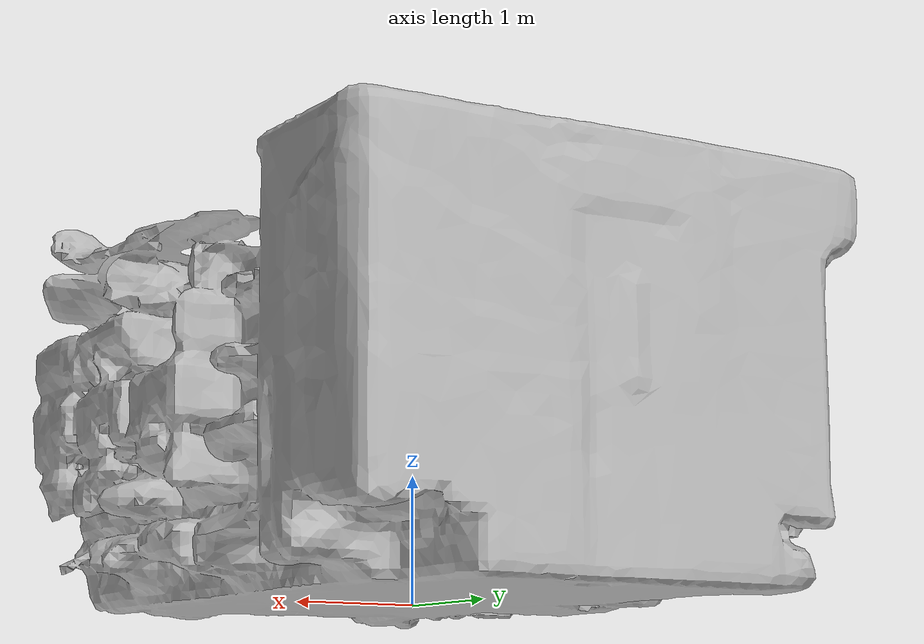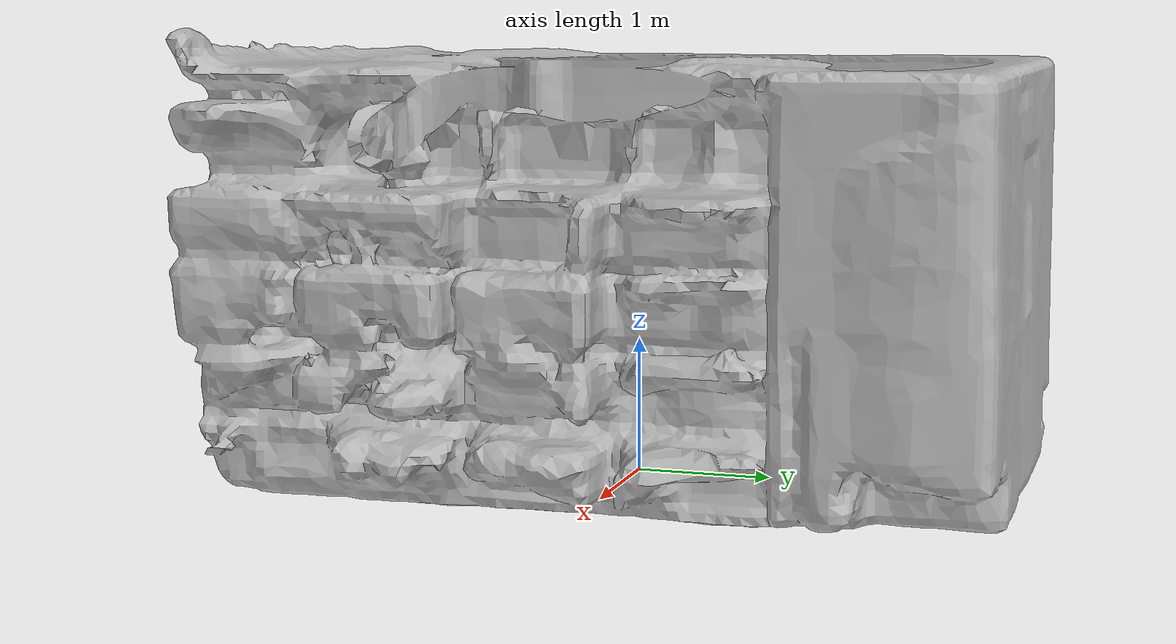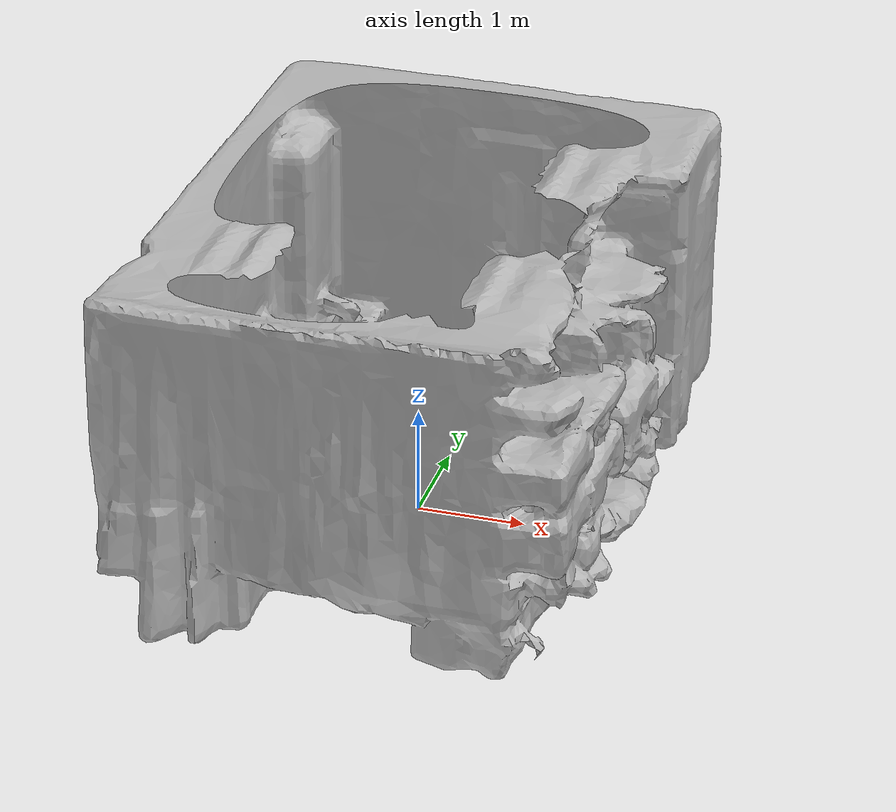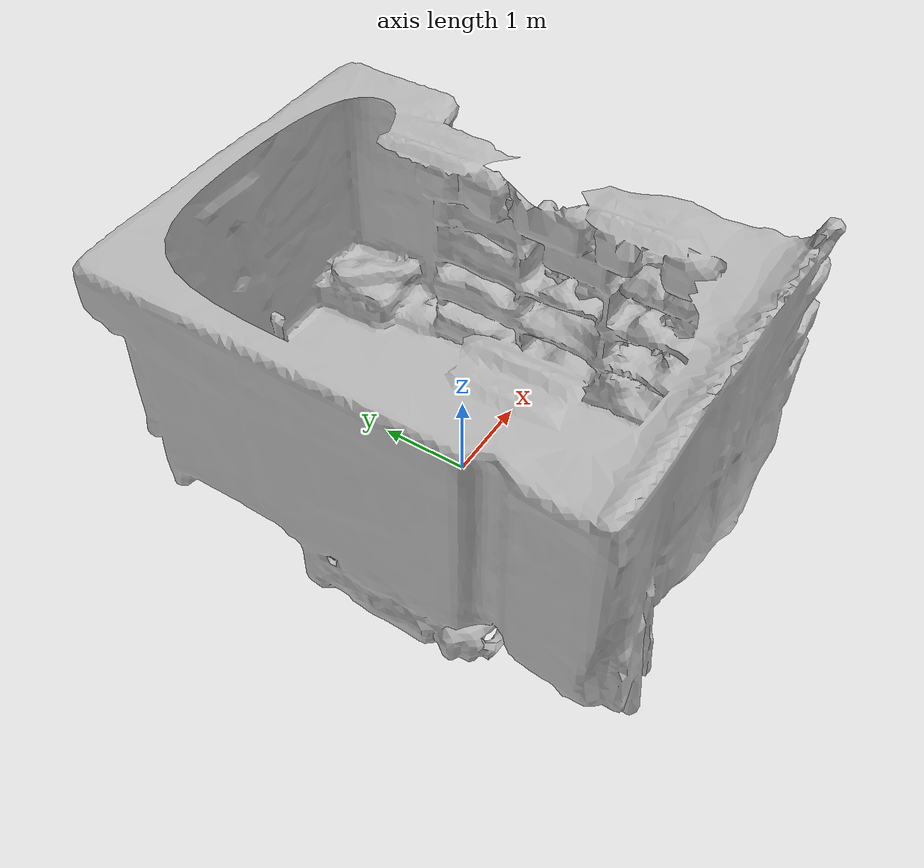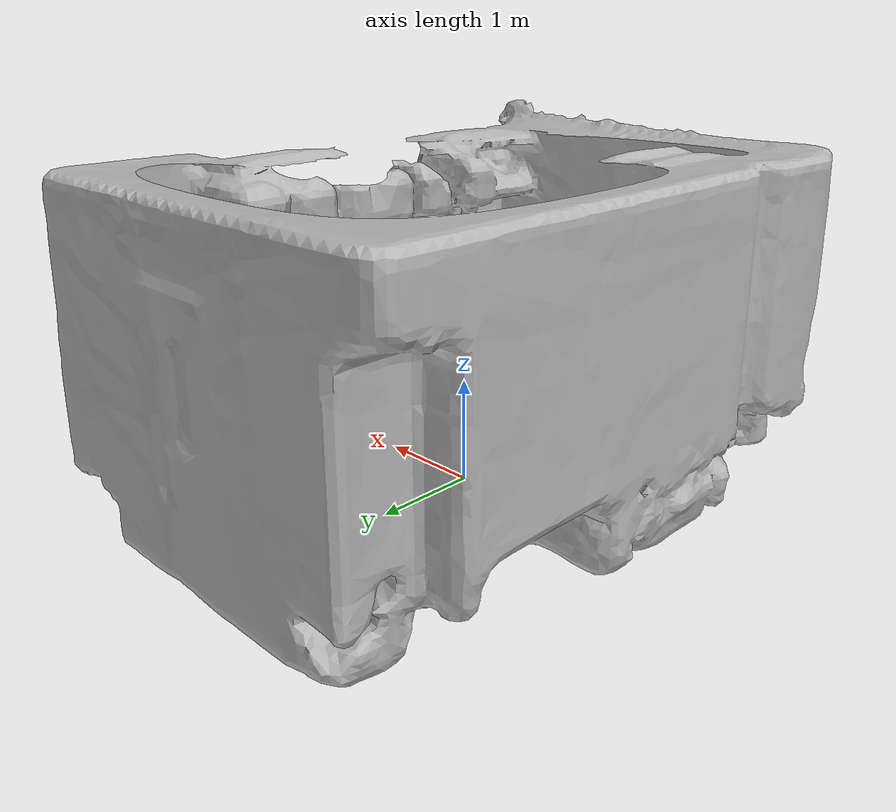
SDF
<sdf version="1.6">
  <model name="env2">
    <static>true</static>
    <link name="link">
      <visual name="visual">
        <geometry>
          <mesh>
            <uri>model://env2/meshes/Env2.dae</uri>
          </mesh>
        </geometry>
      </visual>
      <collision name="collision">
        <geometry>
          <mesh>
            <uri>model://env2/meshes/Env2.dae</uri>
          </mesh>
        </geometry>
      </collision>
    </link>
  </model>
</sdf>
